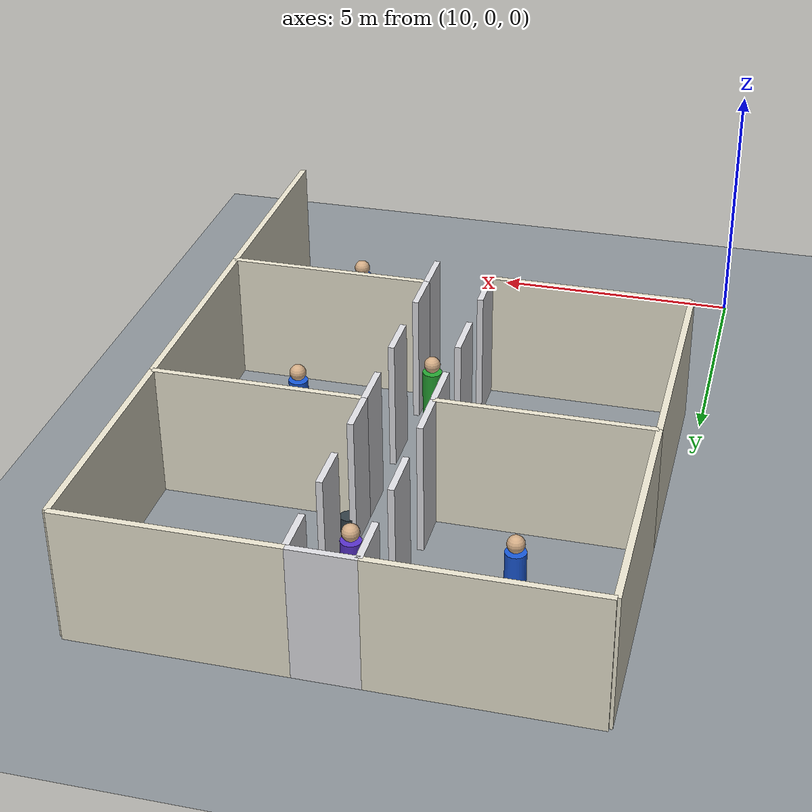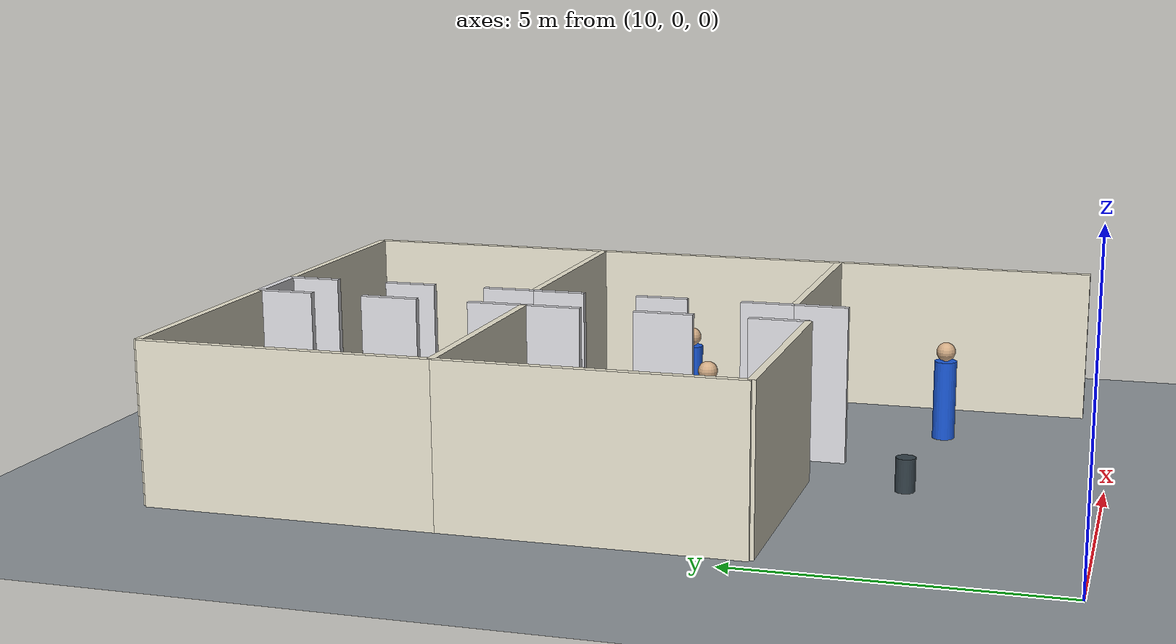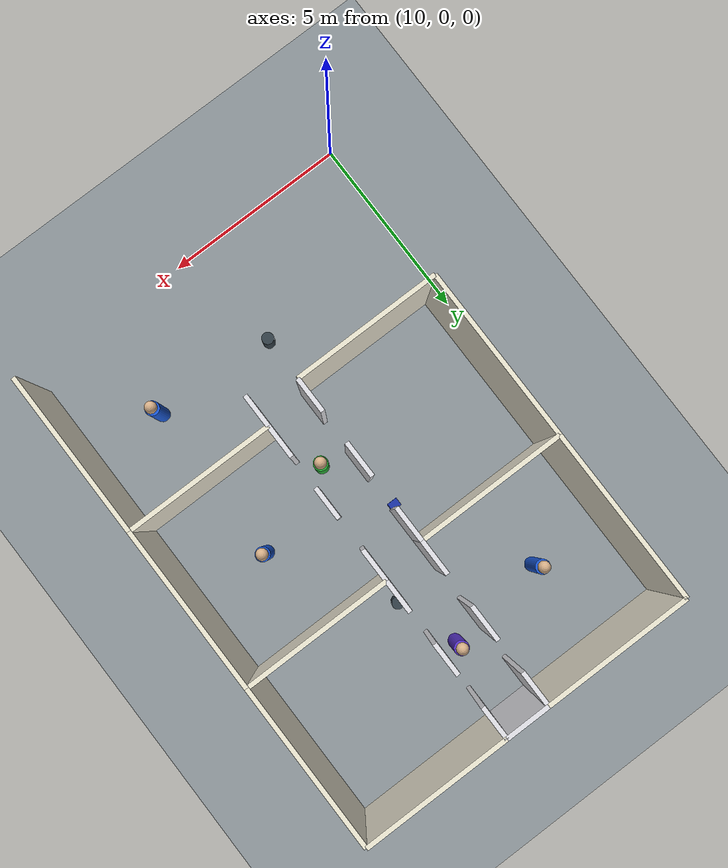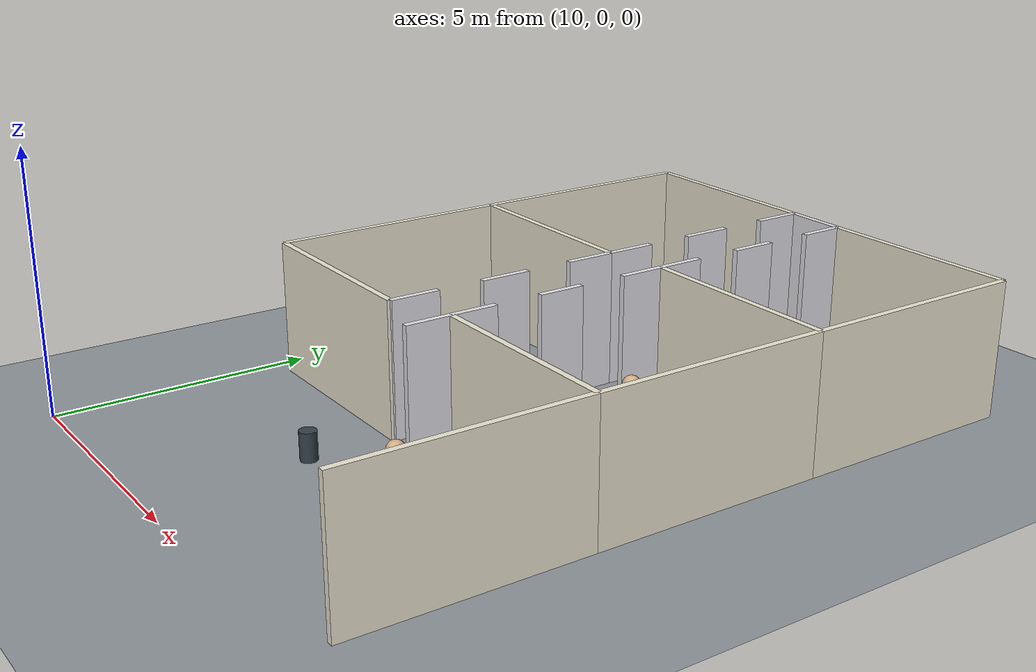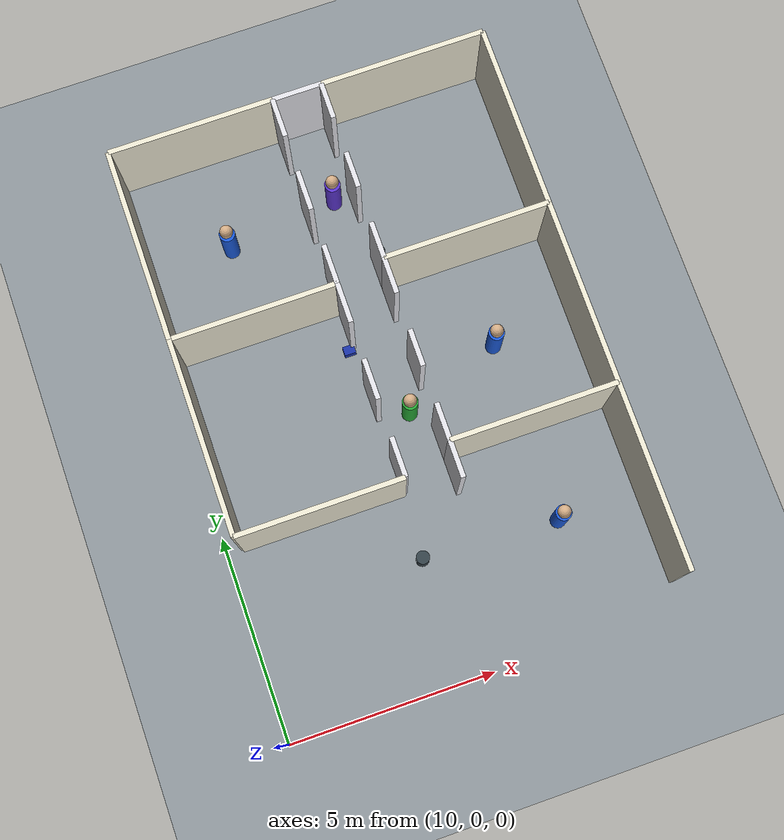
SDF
<sdf version="1.9">
 <world name="school_arena">
  <model name="ground">
   <static>true</static>
   <link name="link">
    <collision name="collision">
     <geometry><plane><normal>0 0 1</normal><size>80 80</size></plane></geometry>
    </collision>
    <visual name="visual">
     <geometry><plane><normal>0 0 1</normal><size>80 80</size></plane></geometry>
     <material><ambient>0.55 0.58 0.60 1</ambient><diffuse>0.55 0.58 0.60 1</diffuse></material>
    </visual>
   </link>
  </model>
  <model name="classroom_11_north">
   <static>true</static>
   <pose>17.6000 5.0667 1.3000 0 0 0</pose>
   <link name="link">
    <collision name="collision"><geometry><box><size>4.0000 0.1200 2.6000</size></box></geometry></collision>
    <visual name="visual">
     <geometry><box><size>4.0000 0.1200 2.6000</size></box></geometry>
     <material><ambient>0.92 0.90 0.82 1</ambient><diffuse>0.92 0.90 0.82 1</diffuse></material>
    </visual>
   </link>
  </model>
  <model name="classroom_11_east">
   <static>true</static>
   <pose>19.6000 2.8333 1.3000 0 0 0</pose>
   <link name="link">
    <collision name="collision"><geometry><box><size>0.1200 4.4667 2.6000</size></box></geometry></collision>
    <visual name="visual">
     <geometry><box><size>0.1200 4.4667 2.6000</size></box></geometry>
     <material><ambient>0.92 0.90 0.82 1</ambient><diffuse>0.92 0.90 0.82 1</diffuse></material>
    </visual>
   </link>
  </model>
  <model name="classroom_11_front_2">
   <static>true</static>
   <pose>15.6000 4.6217 1.3000 0 0 0</pose>
   <link name="link">
    <collision name="collision"><geometry><box><size>0.1200 0.8900 2.6000</size></box></geometry></collision>
    <visual name="visual">
     <geometry><box><size>0.1200 0.8900 2.6000</size></box></geometry>
     <material><ambient>0.88 0.88 0.90 1</ambient><diffuse>0.88 0.88 0.90 1</diffuse></material>
    </visual>
   </link>
  </model>
  <model name="classroom_12_south">
   <static>true</static>
   <pose>17.6000 5.0667 1.3000 0 0 0</pose>
   <link name="link">
    <collision name="collision"><geometry><box><size>4.0000 0.1200 2.6000</size></box></geometry></collision>
    <visual name="visual">
     <geometry><box><size>4.0000 0.1200 2.6000</size></box></geometry>
     <material><ambient>0.92 0.90 0.82 1</ambient><diffuse>0.92 0.90 0.82 1</diffuse></material>
    </visual>
   </link>
  </model>
  <model name="classroom_12_north">
   <static>true</static>
   <pose>17.6000 9.5333 1.3000 0 0 0</pose>
   <link name="link">
    <collision name="collision"><geometry><box><size>4.0000 0.1200 2.6000</size></box></geometry></collision>
    <visual name="visual">
     <geometry><box><size>4.0000 0.1200 2.6000</size></box></geometry>
     <material><ambient>0.92 0.90 0.82 1</ambient><diffuse>0.92 0.90 0.82 1</diffuse></material>
    </visual>
   </link>
  </model>
  <model name="classroom_12_east">
   <static>true</static>
   <pose>19.6000 7.3000 1.3000 0 0 0</pose>
   <link name="link">
    <collision name="collision"><geometry><box><size>0.1200 4.4667 2.6000</size></box></geometry></collision>
    <visual name="visual">
     <geometry><box><size>0.1200 4.4667 2.6000</size></box></geometry>
     <material><ambient>0.92 0.90 0.82 1</ambient><diffuse>0.92 0.90 0.82 1</diffuse></material>
    </visual>
   </link>
  </model>
  <model name="classroom_12_front_0">
   <static>true</static>
   <pose>15.6000 5.5117 1.3000 0 0 0</pose>
   <link name="link">
    <collision name="collision"><geometry><box><size>0.1200 0.8900 2.6000</size></box></geometry></collision>
    <visual name="visual">
     <geometry><box><size>0.1200 0.8900 2.6000</size></box></geometry>
     <material><ambient>0.88 0.88 0.90 1</ambient><diffuse>0.88 0.88 0.90 1</diffuse></material>
    </visual>
   </link>
  </model>
  <model name="classroom_12_front_1">
   <static>true</static>
   <pose>15.6000 7.3000 1.3000 0 0 0</pose>
   <link name="link">
    <collision name="collision"><geometry><box><size>0.1200 0.8867 2.6000</size></box></geometry></collision>
    <visual name="visual">
     <geometry><box><size>0.1200 0.8867 2.6000</size></box></geometry>
     <material><ambient>0.88 0.88 0.90 1</ambient><diffuse>0.88 0.88 0.90 1</diffuse></material>
    </visual>
   </link>
  </model>
  <model name="classroom_12_front_2">
   <static>true</static>
   <pose>15.6000 9.0883 1.3000 0 0 0</pose>
   <link name="link">
    <collision name="collision"><geometry><box><size>0.1200 0.8900 2.6000</size></box></geometry></collision>
    <visual name="visual">
     <geometry><box><size>0.1200 0.8900 2.6000</size></box></geometry>
     <material><ambient>0.88 0.88 0.90 1</ambient><diffuse>0.88 0.88 0.90 1</diffuse></material>
    </visual>
   </link>
  </model>
  <model name="classroom_13_south">
   <static>true</static>
   <pose>17.6000 9.5333 1.3000 0 0 0</pose>
   <link name="link">
    <collision name="collision"><geometry><box><size>4.0000 0.1200 2.6000</size></box></geometry></collision>
    <visual name="visual">
     <geometry><box><size>4.0000 0.1200 2.6000</size></box></geometry>
     <material><ambient>0.92 0.90 0.82 1</ambient><diffuse>0.92 0.90 0.82 1</diffuse></material>
    </visual>
   </link>
  </model>
  <model name="classroom_13_north">
   <static>true</static>
   <pose>17.6000 14.0000 1.3000 0 0 0</pose>
   <link name="link">
    <collision name="collision"><geometry><box><size>4.0000 0.1200 2.6000</size></box></geometry></collision>
    <visual name="visual">
     <geometry><box><size>4.0000 0.1200 2.6000</size></box></geometry>
     <material><ambient>0.92 0.90 0.82 1</ambient><diffuse>0.92 0.90 0.82 1</diffuse></material>
    </visual>
   </link>
  </model>
  <model name="classroom_13_east">
   <static>true</static>
   <pose>19.6000 11.7667 1.3000 0 0 0</pose>
   <link name="link">
    <collision name="collision"><geometry><box><size>0.1200 4.4667 2.6000</size></box></geometry></collision>
    <visual name="visual">
     <geometry><box><size>0.1200 4.4667 2.6000</size></box></geometry>
     <material><ambient>0.92 0.90 0.82 1</ambient><diffuse>0.92 0.90 0.82 1</diffuse></material>
    </visual>
   </link>
  </model>
  <model name="classroom_13_front_0">
   <static>true</static>
   <pose>15.6000 9.9783 1.3000 0 0 0</pose>
   <link name="link">
    <collision name="collision"><geometry><box><size>0.1200 0.8900 2.6000</size></box></geometry></collision>
    <visual name="visual">
     <geometry><box><size>0.1200 0.8900 2.6000</size></box></geometry>
     <material><ambient>0.88 0.88 0.90 1</ambient><diffuse>0.88 0.88 0.90 1</diffuse></material>
    </visual>
   </link>
  </model>
  <model name="classroom_13_front_1">
   <static>true</static>
   <pose>15.6000 11.7667 1.3000 0 0 0</pose>
   <link name="link">
    <collision name="collision"><geometry><box><size>0.1200 0.8867 2.6000</size></box></geometry></collision>
    <visual name="visual">
     <geometry><box><size>0.1200 0.8867 2.6000</size></box></geometry>
     <material><ambient>0.88 0.88 0.90 1</ambient><diffuse>0.88 0.88 0.90 1</diffuse></material>
    </visual>
   </link>
  </model>
  <model name="classroom_13_front_2">
   <static>true</static>
   <pose>15.6000 13.5550 1.3000 0 0 0</pose>
   <link name="link">
    <collision name="collision"><geometry><box><size>0.1200 0.8900 2.6000</size></box></geometry></collision>
    <visual name="visual">
     <geometry><box><size>0.1200 0.8900 2.6000</size></box></geometry>
     <material><ambient>0.88 0.88 0.90 1</ambient><diffuse>0.88 0.88 0.90 1</diffuse></material>
    </visual>
   </link>
  </model>
  <model name="classroom_14_south">
   <static>true</static>
   <pose>12.4000 4.6000 1.3000 0 0 0</pose>
   <link name="link">
    <collision name="collision"><geometry><box><size>4.0000 0.1200 2.6000</size></box></geometry></collision>
    <visual name="visual">
     <geometry><box><size>4.0000 0.1200 2.6000</size></box></geometry>
     <material><ambient>0.92 0.90 0.82 1</ambient><diffuse>0.92 0.90 0.82 1</diffuse></material>
    </visual>
   </link>
  </model>
  <model name="classroom_14_north">
   <static>true</static>
   <pose>12.4000 9.3000 1.3000 0 0 0</pose>
   <link name="link">
    <collision name="collision"><geometry><box><size>4.0000 0.1200 2.6000</size></box></geometry></collision>
    <visual name="visual">
     <geometry><box><size>4.0000 0.1200 2.6000</size></box></geometry>
     <material><ambient>0.92 0.90 0.82 1</ambient><diffuse>0.92 0.90 0.82 1</diffuse></material>
    </visual>
   </link>
  </model>
  <model name="classroom_14_west">
   <static>true</static>
   <pose>10.4000 6.9500 1.3000 0 0 0</pose>
   <link name="link">
    <collision name="collision"><geometry><box><size>0.1200 4.7000 2.6000</size></box></geometry></collision>
    <visual name="visual">
     <geometry><box><size>0.1200 4.7000 2.6000</size></box></geometry>
     <material><ambient>0.92 0.90 0.82 1</ambient><diffuse>0.92 0.90 0.82 1</diffuse></material>
    </visual>
   </link>
  </model>
  <model name="classroom_14_front_0">
   <static>true</static>
   <pose>14.4000 5.0800 1.3000 0 0 0</pose>
   <link name="link">
    <collision name="collision"><geometry><box><size>0.1200 0.9600 2.6000</size></box></geometry></collision>
    <visual name="visual">
     <geometry><box><size>0.1200 0.9600 2.6000</size></box></geometry>
     <material><ambient>0.88 0.88 0.90 1</ambient><diffuse>0.88 0.88 0.90 1</diffuse></material>
    </visual>
   </link>
  </model>
  <model name="classroom_14_front_1">
   <static>true</static>
   <pose>14.4000 6.9500 1.3000 0 0 0</pose>
   <link name="link">
    <collision name="collision"><geometry><box><size>0.1200 0.9800 2.6000</size></box></geometry></collision>
    <visual name="visual">
     <geometry><box><size>0.1200 0.9800 2.6000</size></box></geometry>
     <material><ambient>0.88 0.88 0.90 1</ambient><diffuse>0.88 0.88 0.90 1</diffuse></material>
    </visual>
   </link>
  </model>
  <model name="classroom_14_front_2">
   <static>true</static>
   <pose>14.4000 8.8200 1.3000 0 0 0</pose>
   <link name="link">
    <collision name="collision"><geometry><box><size>0.1200 0.9600 2.6000</size></box></geometry></collision>
    <visual name="visual">
     <geometry><box><size>0.1200 0.9600 2.6000</size></box></geometry>
     <material><ambient>0.88 0.88 0.90 1</ambient><diffuse>0.88 0.88 0.90 1</diffuse></material>
    </visual>
   </link>
  </model>
  <model name="classroom_15_south">
   <static>true</static>
   <pose>12.4000 9.3000 1.3000 0 0 0</pose>
   <link name="link">
    <collision name="collision"><geometry><box><size>4.0000 0.1200 2.6000</size></box></geometry></collision>
    <visual name="visual">
     <geometry><box><size>4.0000 0.1200 2.6000</size></box></geometry>
     <material><ambient>0.92 0.90 0.82 1</ambient><diffuse>0.92 0.90 0.82 1</diffuse></material>
    </visual>
   </link>
  </model>
  <model name="classroom_15_north">
   <static>true</static>
   <pose>12.4000 14.0000 1.3000 0 0 0</pose>
   <link name="link">
    <collision name="collision"><geometry><box><size>4.0000 0.1200 2.6000</size></box></geometry></collision>
    <visual name="visual">
     <geometry><box><size>4.0000 0.1200 2.6000</size></box></geometry>
     <material><ambient>0.92 0.90 0.82 1</ambient><diffuse>0.92 0.90 0.82 1</diffuse></material>
    </visual>
   </link>
  </model>
  <model name="classroom_15_west">
   <static>true</static>
   <pose>10.4000 11.6500 1.3000 0 0 0</pose>
   <link name="link">
    <collision name="collision"><geometry><box><size>0.1200 4.7000 2.6000</size></box></geometry></collision>
    <visual name="visual">
     <geometry><box><size>0.1200 4.7000 2.6000</size></box></geometry>
     <material><ambient>0.92 0.90 0.82 1</ambient><diffuse>0.92 0.90 0.82 1</diffuse></material>
    </visual>
   </link>
  </model>
  <model name="classroom_15_front_0">
   <static>true</static>
   <pose>14.4000 9.7800 1.3000 0 0 0</pose>
   <link name="link">
    <collision name="collision"><geometry><box><size>0.1200 0.9600 2.6000</size></box></geometry></collision>
    <visual name="visual">
     <geometry><box><size>0.1200 0.9600 2.6000</size></box></geometry>
     <material><ambient>0.88 0.88 0.90 1</ambient><diffuse>0.88 0.88 0.90 1</diffuse></material>
    </visual>
   </link>
  </model>
  <model name="classroom_15_front_1">
   <static>true</static>
   <pose>14.4000 11.6500 1.3000 0 0 0</pose>
   <link name="link">
    <collision name="collision"><geometry><box><size>0.1200 0.9800 2.6000</size></box></geometry></collision>
    <visual name="visual">
     <geometry><box><size>0.1200 0.9800 2.6000</size></box></geometry>
     <material><ambient>0.88 0.88 0.90 1</ambient><diffuse>0.88 0.88 0.90 1</diffuse></material>
    </visual>
   </link>
  </model>
  <model name="classroom_15_front_2">
   <static>true</static>
   <pose>14.4000 13.5200 1.3000 0 0 0</pose>
   <link name="link">
    <collision name="collision"><geometry><box><size>0.1200 0.9600 2.6000</size></box></geometry></collision>
    <visual name="visual">
     <geometry><box><size>0.1200 0.9600 2.6000</size></box></geometry>
     <material><ambient>0.88 0.88 0.90 1</ambient><diffuse>0.88 0.88 0.90 1</diffuse></material>
    </visual>
   </link>
  </model>
  <model name="corridor_F_north_end">
   <static>true</static>
   <pose>15.0000 14.0000 1.3000 0 0 0</pose>
   <link name="link">
    <collision name="collision"><geometry><box><size>1.2000 0.1200 2.6000</size></box></geometry></collision>
    <visual name="visual">
     <geometry><box><size>1.2000 0.1200 2.6000</size></box></geometry>
     <material><ambient>0.88 0.88 0.90 1</ambient><diffuse>0.88 0.88 0.90 1</diffuse></material>
    </visual>
   </link>
  </model>
  <model name="trash_bin_01">
   <static>true</static>
   <pose>14.2800 3.0000 0.2750 0.0000 0.0000 0.0000</pose>
   <link name="link">
    <collision name="collision">
     <geometry><cylinder><radius>0.1600</radius><length>0.5500</length></cylinder></geometry>
    </collision>
    <visual name="visual">
     <geometry><cylinder><radius>0.1600</radius><length>0.5500</length></cylinder></geometry>
     <material><ambient>0.20 0.25 0.28 1</ambient><diffuse>0.20 0.25 0.28 1</diffuse></material>
    </visual>
   </link>
  </model>
  <model name="trash_bin_02">
   <static>true</static>
   <pose>15.7200 10.3000 0.2750 0.0000 0.0000 0.0000</pose>
   <link name="link">
    <collision name="collision">
     <geometry><cylinder><radius>0.1600</radius><length>0.5500</length></cylinder></geometry>
    </collision>
    <visual name="visual">
     <geometry><cylinder><radius>0.1600</radius><length>0.5500</length></cylinder></geometry>
     <material><ambient>0.20 0.25 0.28 1</ambient><diffuse>0.20 0.25 0.28 1</diffuse></material>
    </visual>
   </link>
  </model>
  <model name="backpack_02">
   <static>true</static>
   <pose>14.2800 8.3000 0.1200 0.0000 0.0000 0.0000</pose>
   <link name="link">
    <collision name="collision"><geometry><box><size>0.2800 0.2200 0.2400</size></box></geometry></collision>
    <visual name="visual">
     <geometry><box><size>0.2800 0.2200 0.2400</size></box></geometry>
     <material><ambient>0.10 0.20 0.65 1</ambient><diffuse>0.10 0.20 0.65 1</diffuse></material>
    </visual>
   </link>
  </model>
  <model name="student_vertical_down">
   <static>false</static>
   <pose>15.150 12.000 0.000 0 0 -1.5708</pose>
   <link name="base_link">
    <kinematic>true</kinematic>
    <gravity>false</gravity>
    <inertial>
     <mass>8.0</mass>
     <inertia><ixx>12.0</ixx><ixy>0</ixy><ixz>0</ixz><iyy>12.0</iyy><iyz>0</iyz><izz>0.45</izz></inertia>
    </inertial>
    <visual name="body">
     <geometry><cylinder><radius>0.19</radius><length>1.35</length></cylinder></geometry>
     <pose>0 0 0.675 0 0 0</pose>
     <material><ambient>0.35 0.20 0.80 1</ambient><diffuse>0.35 0.20 0.80 1</diffuse></material>
    </visual>
    <visual name="head">
     <pose>0 0 1.510 0 0 0</pose>
     <geometry><sphere><radius>0.16</radius></sphere></geometry>
     <material><ambient>0.82 0.67 0.52 1</ambient><diffuse>0.82 0.67 0.52 1</diffuse></material>
    </visual>
   </link>
  </model>
  <model name="student_short_cross">
   <static>false</static>
   <pose>15.150 6.400 0.000 0 0 3.14159</pose>
   <link name="base_link">
    <kinematic>true</kinematic>
    <gravity>false</gravity>
    <inertial>
     <mass>8.0</mass>
     <inertia><ixx>12.0</ixx><ixy>0</ixy><ixz>0</ixz><iyy>12.0</iyy><iyz>0</iyz><izz>0.45</izz></inertia>
    </inertial>
    <visual name="body">
     <geometry><cylinder><radius>0.19</radius><length>1.35</length></cylinder></geometry>
     <pose>0 0 0.675 0 0 0</pose>
     <material><ambient>0.15 0.65 0.20 1</ambient><diffuse>0.15 0.65 0.20 1</diffuse></material>
    </visual>
    <visual name="head">
     <pose>0 0 1.510 0 0 0</pose>
     <geometry><sphere><radius>0.16</radius></sphere></geometry>
     <material><ambient>0.82 0.67 0.52 1</ambient><diffuse>0.82 0.67 0.52 1</diffuse></material>
    </visual>
   </link>
  </model>
  <model name="background_agent_3">
   <static>false</static>
   <pose>17.60000 7.30000 0.000 0 0 -2.657777</pose>
   <link name="base_link">
    <kinematic>true</kinematic>
    <gravity>false</gravity>
    <inertial>
     <mass>8.0</mass>
     <inertia><ixx>12.0</ixx><ixy>0</ixy><ixz>0</ixz><iyy>12.0</iyy><iyz>0</iyz><izz>0.45</izz></inertia>
    </inertial>
    <visual name="body">
     <geometry><cylinder><radius>0.19</radius><length>1.35</length></cylinder></geometry>
     <pose>0 0 0.675 0 0 0</pose>
     <material><ambient>0.10 0.35 0.85 1</ambient><diffuse>0.10 0.35 0.85 1</diffuse></material>
    </visual>
    <visual name="head">
     <pose>0 0 1.510 0 0 0</pose>
     <geometry><sphere><radius>0.16</radius></sphere></geometry>
     <material><ambient>0.82 0.67 0.52 1</ambient><diffuse>0.82 0.67 0.52 1</diffuse></material>
    </visual>
   </link>
  </model>
  <model name="background_agent_6">
   <static>false</static>
   <pose>12.40000 11.65000 0.000 0 0 -0.505099</pose>
   <link name="base_link">
    <kinematic>true</kinematic>
    <gravity>false</gravity>
    <inertial>
     <mass>8.0</mass>
     <inertia><ixx>12.0</ixx><ixy>0</ixy><ixz>0</ixz><iyy>12.0</iyy><iyz>0</iyz><izz>0.45</izz></inertia>
    </inertial>
    <visual name="body">
     <geometry><cylinder><radius>0.19</radius><length>1.35</length></cylinder></geometry>
     <pose>0 0 0.675 0 0 0</pose>
     <material><ambient>0.10 0.35 0.85 1</ambient><diffuse>0.10 0.35 0.85 1</diffuse></material>
    </visual>
    <visual name="head">
     <pose>0 0 1.510 0 0 0</pose>
     <geometry><sphere><radius>0.16</radius></sphere></geometry>
     <material><ambient>0.82 0.67 0.52 1</ambient><diffuse>0.82 0.67 0.52 1</diffuse></material>
    </visual>
   </link>
  </model>
  <model name="background_agent_11">
   <static>false</static>
   <pose>17.60000 2.83330 0.000 0 0 -2.657777</pose>
   <link name="base_link">
    <kinematic>true</kinematic>
    <gravity>false</gravity>
    <inertial>
     <mass>8.0</mass>
     <inertia><ixx>12.0</ixx><ixy>0</ixy><ixz>0</ixz><iyy>12.0</iyy><iyz>0</iyz><izz>0.45</izz></inertia>
    </inertial>
    <visual name="body">
     <geometry><cylinder><radius>0.19</radius><length>1.35</length></cylinder></geometry>
     <pose>0 0 0.675 0 0 0</pose>
     <material><ambient>0.10 0.35 0.85 1</ambient><diffuse>0.10 0.35 0.85 1</diffuse></material>
    </visual>
    <visual name="head">
     <pose>0 0 1.510 0 0 0</pose>
     <geometry><sphere><radius>0.16</radius></sphere></geometry>
     <material><ambient>0.82 0.67 0.52 1</ambient><diffuse>0.82 0.67 0.52 1</diffuse></material>
    </visual>
   </link>
  </model>
 </world>
</sdf>
